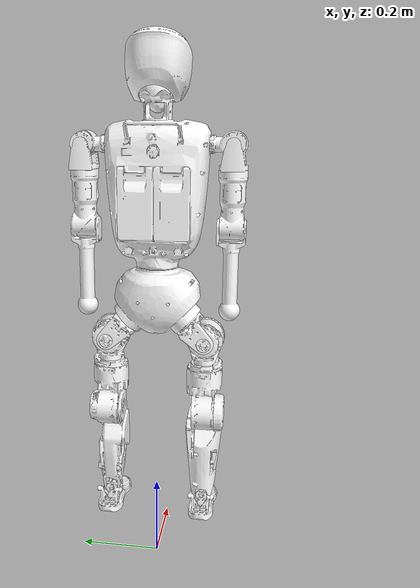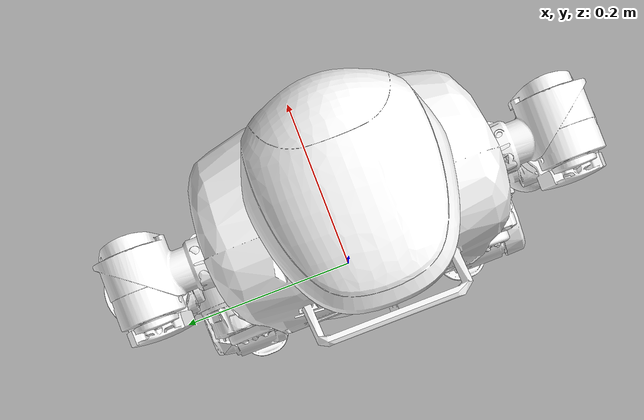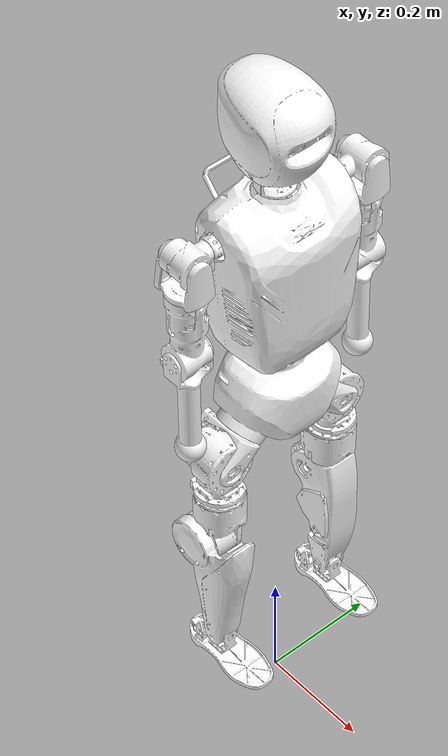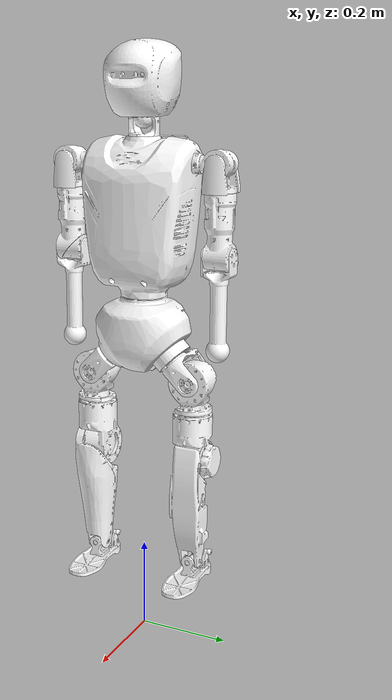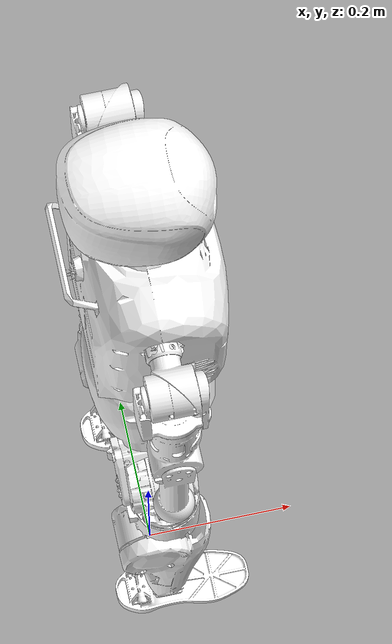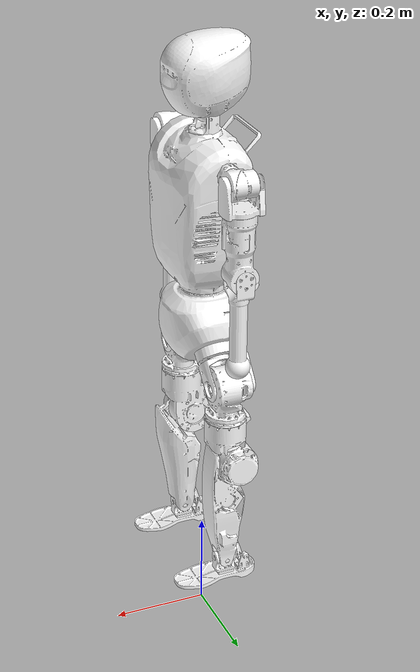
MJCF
<?xml version='1.0' encoding='utf-8'?>
<mujoco model="biped_s16">
  <compiler angle="radian" meshdir="../meshes/" />
  <size njmax="500" nconmax="100" />
    <default>
    <default class="collision">
      <geom material="collision" contype="1" conaffinity="1" user="2" rgba="0.9 0.3 0.3 0.2"/>
    </default>
  </default>
  <asset>
    <material name="collision"/>
    <mesh name="torso" file="torso.STL" />
    <mesh name="waist" file="waist.STL" />
    <mesh name="l_leg_pitch" file="l_leg_pitch.STL" />
    <mesh name="l_leg_roll" file="l_leg_roll.STL" />
    <mesh name="l_leg_yaw" file="l_leg_yaw.STL" />
    <mesh name="l_knee" file="l_knee.STL" />
    <mesh name="l_foot_pitch" file="l_foot_pitch.STL" />
    <mesh name="l_foot_roll" file="l_foot_roll.STL" />
    <mesh name="r_leg_pitch" file="r_leg_pitch.STL" />
    <mesh name="r_leg_roll" file="r_leg_roll.STL" />
    <mesh name="r_leg_yaw" file="r_leg_yaw.STL" />
    <mesh name="r_knee" file="r_knee.STL" />
    <mesh name="r_foot_pitch" file="r_foot_pitch.STL" />
    <mesh name="r_foot_roll" file="r_foot_roll.STL" />
    <mesh name="l_arm_pitch" file="l_arm_pitch.STL" />
    <mesh name="l_arm_roll" file="l_arm_roll.STL" />
    <mesh name="l_arm_yaw" file="l_arm_yaw.STL" />
    <mesh name="l_forearm" file="l_forearm.STL" />
    <mesh name="r_arm_pitch" file="r_arm_pitch.STL" />
    <mesh name="r_arm_roll" file="r_arm_roll.STL" />
    <mesh name="r_arm_yaw" file="r_arm_yaw.STL" />
    <mesh name="r_forearm" file="r_forearm.STL" />
    <mesh name="head_yaw" file="head_yaw.STL" />
    <mesh name="head_pitch" file="head_pitch.STL" />
  </asset>
  <worldbody>
    <body name="base_link" pos="0 0 0.82">
      <freejoint />
      <inertial pos="0.0015256 0 -0.119276" mass="4.60776" diaginertia="0.0210197 0.0145818 0.0145445" />
      <geom type="mesh" contype="0" conaffinity="0" group="1" density="0" rgba="1 1 1 1" mesh="waist"/>
      <geom size="0.08" pos="0.005 0 -0.12" quat="0.923764 0.382961 0 0" group="3"  class="collision"/>
      <body name="leg_l1_link" pos="0 0.117518 -0.219916">
          <inertial pos="-0.00211304 -0.0289049 0.0293713" quat="0.328382 0.628109 0.245387 0.661385" mass="0.428775" diaginertia="0.00113478 0.00105688 0.000681337" />
          <joint name="leg_l1_joint" pos="0 0 0" axis="0 0.707107 -0.707107" range="-3.228 2.44346" armature="0.003" actuatorfrcrange="-80 80" damping="0.2" frictionloss="0.0"/>
          <geom type="mesh" contype="0" conaffinity="0" group="1" density="0" rgba="1 1 1 1" mesh="l_leg_pitch"/>
          <geom size="0.04 0.024" pos="-0.028 -0.02 0.02" quat="0.923764 0.382961 0 0" type="capsule" group="3"  class="collision"/>
          <geom size="0.04 0.024" pos="0.028 -0.02 0.02" quat="0.923764 0.382961 0 0" type="capsule" group="3"  class="collision"/>
          <body name="leg_l2_link">
            <inertial pos="0.0036925 -0.00030734 -0.0533481" mass="2.50011" diaginertia="0.00737592 0.00723089 0.002556" />
            <joint name="leg_l2_joint" pos="0 0 0" axis="1 0 0" range="-0.847008 2.41414" armature="0.003" actuatorfrcrange="-63 63" damping="0.2" frictionloss="0.0"/>
            <geom type="mesh" contype="0" conaffinity="0" group="1" density="0" rgba="1 1 1 1" mesh="l_leg_roll"/>
            <geom size="0.05 0.045" pos="0 0 -0.045" type="capsule" group="3"  class="collision"/>
            <body name="leg_l3_link">
              <inertial pos="-0.0167216 -0.00529551 -0.174066" quat="0.707107 0 0 0.707107" mass="1.10966" diaginertia="0.00154328 0.00126836 0.00122709" />
              <joint name="leg_l3_joint" pos="0 0 0" axis="0 0 1" range="-1.66 1.66" armature="0.003" actuatorfrcrange="-80 80" damping="0.2" frictionloss="0.0"/>
              <geom type="mesh" contype="0" conaffinity="0" group="1" density="0" rgba="1 1 1 1" mesh="l_leg_yaw"/>
              <geom size="0.045 0.015" pos="-0.021 0 -0.182" quat="0.707388 0.706825 0 0" type="capsule" group="3"  class="collision"/>
              <body name="leg_l4_link" pos="-0.021 0 -0.182">
                <inertial pos="0.0223209 0.00803122 -0.104902" quat="0.707107 0 0 0.707107" mass="1.55002" diaginertia="0.00671651 0.00671114 0.0012886" />
                <joint name="leg_l4_joint" pos="0 0 0" axis="0 1 0" range="0 2.61799" armature="0.003" actuatorfrcrange="-63 63" damping="0.2" frictionloss="0.0"/>
                <geom type="mesh" contype="0" conaffinity="0" group="1" density="0" rgba="1 1 1 1" mesh="l_knee"/>
                <geom size="0.035 0.075" pos="0.021 0 -0.15" type="capsule" group="3"  class="collision"/>
                <geom size="0.005 0.02" pos="0.07 0 0.01" quat="0.707388 0.706825 0 0" type="capsule" group="3"  class="collision"/>
                <geom size="0.005 0.01" pos="0.072 0 -0.05" quat="0.707388 0.706825 0 0" type="capsule" group="3"  class="collision"/>
                <body name="leg_l5_link" pos="0.021 0 -0.235">
                  <inertial pos="0 0 0" mass="0.0692377" diaginertia="0.00067 0.00067 0.0001172" />
                  <joint name="leg_l5_joint" pos="0 0 0" axis="0 1 0" range="-0.872665 0.523599" armature="0.003" actuatorfrcrange="-27 27" damping="0.2" frictionloss="0.0"/>
                  <geom type="mesh" contype="0" conaffinity="0" group="1" density="0" rgba="1 1 1 1" mesh="l_foot_pitch"/>
                  <body name="leg_l6_link">
                    <inertial pos="-0.00390307 0 -0.0266577" quat="5.76506e-07 0.707653 -5.75615e-07 0.70656" mass="0.351334" diaginertia="0.000987485 0.000937598 0.000213813" />
                    <joint name="leg_l6_joint" pos="0 0 0" axis="1 0 0" range="-0.261799 0.261799" armature="0.003" actuatorfrcrange="-15 15" damping="0.2" frictionloss="0.0"/>
                    <geom type="mesh" contype="0" conaffinity="0" group="1" density="0" rgba="1 1 1 1" mesh="l_foot_roll"/>
                    <geom size="0.035 0.005" pos="-0.05 0 -0.046" type="cylinder" group="3"  class="collision"/>
                    <geom size="0.04 0.005" pos="0.08 0 -0.046" type="cylinder" group="3"  class="collision"/>
                    <geom size="0.06 0.035 0.005" pos="0.01 0 -0.046" type="box" group="3"  class="collision"/>
                  </body>
                </body>
              </body>
            </body>
          </body>
      </body>
      <body name="leg_r1_link" pos="0 -0.117518 -0.219916">
          <inertial pos="-0.00211304 0.0289049 0.0293713" quat="0.661385 0.245387 0.628109 0.328382" mass="0.428775" diaginertia="0.00113478 0.00105688 0.000681337" />
          <joint name="leg_r1_joint" pos="0 0 0" axis="0 -0.707107 -0.707107" range="-2.44 3.23" armature="0.003" actuatorfrcrange="-80 80" damping="0.2" frictionloss="0.0"/>
          <geom type="mesh" contype="0" conaffinity="0" group="1" density="0" rgba="1 1 1 1" mesh="r_leg_pitch"/>
          <geom size="0.04 0.024" pos="-0.028 0.02 0.02" quat="0.923764 -0.382961 0 0" type="capsule" group="3"  class="collision"/>
          <geom size="0.04 0.024" pos="0.028 0.02 0.02" quat="0.923764 -0.382961 0 0" type="capsule" group="3"  class="collision"/>
          <body name="leg_r2_link">
            <inertial pos="0.0036925 0.00030734 -0.0533481" mass="2.50011" diaginertia="0.00737592 0.00723089 0.002556" />
            <joint name="leg_r2_joint" pos="0 0 0" axis="1 0 0" range="-2.41 0.845961" armature="0.003" actuatorfrcrange="-63 63" damping="0.2" frictionloss="0.0"/>
            <geom type="mesh" contype="0" conaffinity="0" group="1" density="0" rgba="1 1 1 1" mesh="r_leg_roll"/>
            <geom size="0.05 0.045" pos="0 0 -0.045" type="capsule" group="3"  class="collision"/>
            <body name="leg_r3_link">
              <inertial pos="-0.0167216 0.00529551 -0.174066" quat="0.707107 0 0 0.707107" mass="1.10966" diaginertia="0.00154328 0.00126836 0.00122709" />
              <joint name="leg_r3_joint" pos="0 0 0" axis="0 0 1" range="-1.66 1.66" armature="0.003" actuatorfrcrange="-80 80" damping="0.2" frictionloss="0.0"/>
              <geom type="mesh" contype="0" conaffinity="0" group="1" density="0" rgba="1 1 1 1" mesh="r_leg_yaw"/>
              <geom size="0.045 0.015" pos="-0.021 0 -0.182" quat="0.707388 0.706825 0 0" type="capsule" group="3"  class="collision"/>
              <body name="leg_r4_link" pos="-0.021 0 -0.182">
                <inertial pos="0.0223209 -0.00803122 -0.104902" quat="0.707107 0 0 0.707107" mass="1.55002" diaginertia="0.00671651 0.00671114 0.0012886" />
                <joint name="leg_r4_joint" pos="0 0 0" axis="0 1 0" range="0 2.61799" armature="0.003" actuatorfrcrange="-63 63" damping="0.2" frictionloss="0.0"/>
                <geom type="mesh" contype="0" conaffinity="0" group="1" density="0" rgba="1 1 1 1" mesh="r_knee"/>
                <geom size="0.035 0.075" pos="0.021 0 -0.15" type="capsule"  group="3"  class="collision"/>
                <geom size="0.005 0.02" pos="0.07 0 0.01" quat="0.707388 0.706825 0 0" type="capsule" group="3"  class="collision"/>
                <geom size="0.005 0.01" pos="0.072 0 -0.05" quat="0.707388 0.706825 0 0" type="capsule" group="3"  class="collision"/>
                <body name="leg_r5_link" pos="0.021 0 -0.235">
                  <inertial pos="0 0 0" mass="0.0692377" diaginertia="0.00067 0.00067 0.0001172"/>
                  <joint name="leg_r5_joint" pos="0 0 0" axis="0 1 0" range="-0.872665 0.523599" armature="0.003" actuatorfrcrange="-27 27" damping="0.2" frictionloss="0.0"/>
                  <geom type="mesh" contype="0" conaffinity="0" group="1" density="0" rgba="1 1 1 1" mesh="r_foot_pitch"/>
                  <body name="leg_r6_link">
                    <inertial pos="-0.00390307 0 -0.0266577" quat="5.76506e-07 0.707653 -5.75615e-07 0.70656" mass="0.351334" diaginertia="0.000987485 0.000937598 0.000213813" />
                    <joint name="leg_r6_joint" pos="0 0 0" axis="1 0 0" range="-0.261799 0.261799" armature="0.003" actuatorfrcrange="-15 15" damping="0.2" frictionloss="0.0"/>
                    <geom type="mesh" contype="0" conaffinity="0" group="1" density="0" rgba="1 1 1 1" mesh="r_foot_roll"/>
                    <geom size="0.035 0.005" pos="-0.05 0 -0.046" type="cylinder" group="3"  class="collision"/>
                    <geom size="0.04 0.005" pos="0.08 0 -0.046" type="cylinder" group="3"  class="collision"/>
                    <geom size="0.06 0.035 0.005" pos="0.01 0 -0.046" type="box" group="3"  class="collision"/>
                  </body>
                </body>
              </body>
            </body>
          </body>
        </body>
      <body name="waist_yaw" pos="0.0 0.0 -0.0">
        <site name="imu" pos="0 0 0" />
        <inertial pos="-0.00602072 0 0.146576" mass="8.61338" diaginertia="0.085979 0.0673308 0.0420581" />
        <joint name="waist_yaw_joint" pos="0 0 0" axis="0 0 1" range="-2.61799 2.61799" armature="0.003" actuatorfrcrange="-80 80" damping="0.2" frictionloss="0.0"/>
        <geom type="mesh" contype="0" conaffinity="0" group="1" density="0" rgba="1 1 1 1" mesh="torso"/>
        <geom size="0.07 0.1 0.13" pos="0.01 0 0.14" type="box" group="3"  class="collision"/>
        <geom size="0.005 0.05" pos="-0.09 0 0.285" quat="0.707105 0.707108 0 0" type="cylinder" group="3"  class="collision"/>
        <body name="zarm_l1_link" pos="0.00029999 0.173503 0.239926">
          <inertial pos="0.00360552 -0.00144553 1.956e-05" quat="0 0.707107 0 0.707107" mass="0.373016" diaginertia="0.00022776 0.00020881 0.00020228" />
          <joint name="zarm_l1_joint" pos="0 0 0" axis="0 1 0" range="-3.14159 2.0944" armature="0.003" actuatorfrcrange="-14.1 14.1" damping="0.2" frictionloss="0.0"/>
          <geom type="mesh" contype="0" conaffinity="0" group="1" density="0" rgba="1 1 1 1" mesh="l_arm_pitch"/>
          <geom size="0.035 0.02" quat="0.707105 0 0.707108 0" type="capsule" group="3"  class="collision"/>
          <body name="zarm_l2_link">
            <inertial pos="0.00089424 0 -0.0423894" quat="0.707107 0 0 0.707107" mass="0.151129" diaginertia="0.00022693 0.00017363 0.00015667" />
            <joint name="zarm_l2_joint" pos="0 0 0" axis="1 0 0" range="-0.349066 3.49066" armature="0.003" actuatorfrcrange="-14.1 14.1" damping="0.2" frictionloss="0.0"/>
            <geom type="mesh" contype="0" conaffinity="0" group="1" density="0" rgba="1 1 1 1" mesh="l_arm_roll"/>
            <geom size="0.035 0.03" pos="0 0 -0.08" type="capsule" group="3"  class="collision"/>
            <body name="zarm_l3_link">
              <inertial pos="-0.00011141 -0.00359387 -0.144176" quat="0.937136 -0.0403207 -0.00133534 -0.346625" mass="0.669223" diaginertia="0.00179175 0.00163486 0.000309118" />
              <joint name="zarm_l3_joint" pos="0 0 0" axis="0 0 1" range="-1.5708 1.5708" armature="0.003" actuatorfrcrange="-14.1 14.1" damping="0.2" frictionloss="0.0"/>
              <geom type="mesh" contype="0" conaffinity="0" group="1" density="0" rgba="1 1 1 1" mesh="l_arm_yaw"/>
              <body name="zarm_l4_link" pos="0 0 -0.188">
                <inertial pos="-0.00053695 -0.000929541 -0.134958" quat="0.988063 0.0167967 -0.040532 -0.14767" mass="0.563218" diaginertia="0.000869641 0.000806131 0.000116147" />
                <joint name="zarm_l4_joint" pos="0 0 0" axis="0 1 0" range="-2.26893 0" armature="0.003" actuatorfrcrange="-14.1 14.1" damping="0.2" frictionloss="0.0"/>
                <geom type="mesh" contype="0" conaffinity="0" group="1" density="0" rgba="1 1 1 1" mesh="l_forearm"/>
                <geom size="0.034 0.015" quat="0.707388 0.706825 0 0" type="capsule" group="3"  class="collision"/>
                <geom size="0.025 0.06" pos="0 0 -0.1" type="capsule" group="3"  class="collision"/>
                <geom size="0.025" pos="0 0 -0.2" group="3" class="collision" friction="0.0001 0.005 0.0001"/>
              </body>
            </body>
          </body>
        </body>
        <body name="zarm_r1_link" pos="0.00029999 -0.173503 0.239926">
          <inertial pos="0.00360552 0.00144553 1.956e-05" quat="0 0.707107 0 0.707107" mass="0.373016" diaginertia="0.00022776 0.00020881 0.00020228" />
          <joint name="zarm_r1_joint" pos="0 0 0" axis="0 1 0" range="-3.14159 2.0944" armature="0.003" actuatorfrcrange="-14.1 14.1" damping="0.2" frictionloss="0.0"/>
          <geom type="mesh" contype="0" conaffinity="0" group="1" density="0" rgba="1 1 1 1" mesh="r_arm_pitch"/>
          <geom size="0.035 0.02" quat="0.707105 0 0.707108 0" type="capsule" group="3"  class="collision"/>
          <body name="zarm_r2_link">
            <inertial pos="0.00089424 0 -0.0423894" quat="0.707107 0 0 0.707107" mass="0.151129" diaginertia="0.00022693 0.00017363 0.00015667" />
            <joint name="zarm_r2_joint" pos="0 0 0" axis="1 0 0" range="-3.49066 0.349066" armature="0.003" actuatorfrcrange="-14.1 14.1" damping="0.2" frictionloss="0.0"/>
            <geom type="mesh" contype="0" conaffinity="0" group="1" density="0" rgba="1 1 1 1" mesh="r_arm_roll"/>
            <geom size="0.035 0.03" pos="0 0 -0.08" type="capsule" group="3"  class="collision"/>
            <body name="zarm_r3_link">
              <inertial pos="-0.00011141 0.00359387 -0.144176" quat="0.937136 0.0403207 -0.00133534 0.346625" mass="0.669221" diaginertia="0.00179175 0.00163486 0.000309118" />
              <joint name="zarm_r3_joint" pos="0 0 0" axis="0 0 1" range="-1.5708 1.5708" armature="0.003" actuatorfrcrange="-14.1 14.1" damping="0.2" frictionloss="0.0"/>
              <geom type="mesh" contype="0" conaffinity="0" group="1" density="0" rgba="1 1 1 1" mesh="r_arm_yaw"/>
              <body name="zarm_r4_link" pos="0 0 -0.188">
                <inertial pos="-0.00053695 0.000929541 -0.134958" quat="0.988063 -0.0167967 -0.040532 0.14767" mass="0.563218" diaginertia="0.000869641 0.000806131 0.000116147" />
                <joint name="zarm_r4_joint" pos="0 0 0" axis="0 1 0" range="-2.26893 0" armature="0.003" actuatorfrcrange="-14.1 14.1" damping="0.2" frictionloss="0.0"/>
                <geom type="mesh" contype="0" conaffinity="0" group="1" density="0" rgba="1 1 1 1" mesh="r_forearm"/>
                <geom size="0.034 0.015" quat="0.707388 0.706825 0 0" type="capsule" group="3"  class="collision"/>
                <geom size="0.025 0.06" pos="0 0 -0.1" type="capsule" group="3"  class="collision"/>
                <geom size="0.025" pos="0 0 -0.2" group="3" class="collision" friction="0.0001 0.005 0.0001"/>
              </body>
            </body>
          </body>
        </body>
        <body name="zhead_1_link" pos="0 0 0.356189">
          <inertial pos="-0.00081546 0 0.0168097" mass="1.03078" diaginertia="0.00215593 0.00186198 0.0007462" />
          <joint name="zhead_1_joint" pos="0 0 0" axis="0 0 1" range="-1.5708 1.5708" armature="0.003" actuatorfrcrange="-1.5 1.5" damping="0.2" frictionloss="0.0" />
          <geom type="mesh" contype="0" conaffinity="0" group="1" density="0" rgba="1 1 1 1" mesh="head_yaw"/>
          <geom size="0.035 0.05" type="capsule" group="3"  class="collision"/>
          <body name="zhead_2_link">
            <inertial pos="0.0146637 -8.28715e-06 0.0574266" quat="-0.00105718 0.707127 0.000596271 0.707085" mass="0.3366" diaginertia="0.00149549 0.00141661 0.00122745"/>
            <joint name="zhead_2_joint" pos="0 0 0" axis="0 1 0" range="-0.349066 0.785398" armature="0.003" actuatorfrcrange="-12 12" damping="0.2" frictionloss="0.0" />
            <geom type="mesh" contype="0" conaffinity="0" group="1" density="0" rgba="1 1 1 1" mesh="head_pitch"/>
            <geom type="sphere" size="0.075" pos="0 0 0.035" group="3"  class="collision"/>
          </body>
        </body>
      </body>
    </body>
  </worldbody>
  <actuator>
    <motor gear="1" joint="leg_l1_joint" name="leg_l1_joint_motor" ctrllimited="true" ctrlrange="-80 80" />
    <motor gear="1" joint="leg_l2_joint" name="leg_l2_joint_motor" ctrllimited="true" ctrlrange="-63 63" />
    <motor gear="1" joint="leg_l3_joint" name="leg_l3_joint_motor" ctrllimited="true" ctrlrange="-80 80" />
    <motor gear="1" joint="leg_l4_joint" name="leg_l4_joint_motor" ctrllimited="true" ctrlrange="-63 63" />
    <motor gear="1" joint="leg_l5_joint" name="leg_l5_joint_motor" ctrllimited="true" ctrlrange="-27 27" />
    <motor gear="1" joint="leg_l6_joint" name="leg_l6_joint_motor" ctrllimited="true" ctrlrange="-15 15" />
    <motor gear="1" joint="leg_r1_joint" name="leg_r1_joint_motor" ctrllimited="true" ctrlrange="-80 80" />
    <motor gear="1" joint="leg_r2_joint" name="leg_r2_joint_motor" ctrllimited="true" ctrlrange="-63 63" />
    <motor gear="1" joint="leg_r3_joint" name="leg_r3_joint_motor" ctrllimited="true" ctrlrange="-80 80" />
    <motor gear="1" joint="leg_r4_joint" name="leg_r4_joint_motor" ctrllimited="true" ctrlrange="-63 63" />
    <motor gear="1" joint="leg_r5_joint" name="leg_r5_joint_motor" ctrllimited="true" ctrlrange="-27 27" />
    <motor gear="1" joint="leg_r6_joint" name="leg_r6_joint_motor" ctrllimited="true" ctrlrange="-15 15" />
    <motor gear="1" joint="waist_yaw_joint" name="waist_yaw_joint_motor" ctrllimited="true" ctrlrange="-80 80" />
    <motor gear="1" joint="zarm_l1_joint" name="zarm_l1_joint_motor" ctrllimited="true" ctrlrange="-14.1 14.1" />
    <motor gear="1" joint="zarm_l2_joint" name="zarm_l2_joint_motor" ctrllimited="true" ctrlrange="-14.1 14.1" />
    <motor gear="1" joint="zarm_l3_joint" name="zarm_l3_joint_motor" ctrllimited="true" ctrlrange="-14.1 14.1" />
    <motor gear="1" joint="zarm_l4_joint" name="zarm_l4_joint_motor" ctrllimited="true" ctrlrange="-14.1 14.1" />
    <motor gear="1" joint="zarm_r1_joint" name="zarm_r1_joint_motor" ctrllimited="true" ctrlrange="-14.1 14.1" />
    <motor gear="1" joint="zarm_r2_joint" name="zarm_r2_joint_motor" ctrllimited="true" ctrlrange="-14.1 14.1" />
    <motor gear="1" joint="zarm_r3_joint" name="zarm_r3_joint_motor" ctrllimited="true" ctrlrange="-14.1 14.1" />
    <motor gear="1" joint="zarm_r4_joint" name="zarm_r4_joint_motor" ctrllimited="true" ctrlrange="-14.1 14.1" />
    <motor gear="1" joint="zhead_1_joint" name="zhead_1_joint_motor" ctrllimited="true" ctrlrange="-14.1 14.1" />
    <motor gear="1" joint="zhead_2_joint" name="zhead_2_joint_motor" ctrllimited="true" ctrlrange="-14.1 14.1" />
  </actuator>
  <sensor>
    <accelerometer name="BodyAcc" site="imu" />
    <velocimeter name="BodyVel" site="imu" />
    <gyro name="BodyGyro" site="imu" />
    <framepos name="BodyPos" objtype="site" objname="imu" />
    <framequat name="BodyQuat" objtype="site" objname="imu" />
    <jointpos name="leg_l1_joint_pos" joint="leg_l1_joint" />
    <jointpos name="leg_l2_joint_pos" joint="leg_l2_joint" />
    <jointpos name="leg_l3_joint_pos" joint="leg_l3_joint" />
    <jointpos name="leg_l4_joint_pos" joint="leg_l4_joint" />
    <jointpos name="leg_l5_joint_pos" joint="leg_l5_joint" />
    <jointpos name="leg_l6_joint_pos" joint="leg_l6_joint" />
    <jointpos name="leg_r1_joint_pos" joint="leg_r1_joint" />
    <jointpos name="leg_r2_joint_pos" joint="leg_r2_joint" />
    <jointpos name="leg_r3_joint_pos" joint="leg_r3_joint" />
    <jointpos name="leg_r4_joint_pos" joint="leg_r4_joint" />
    <jointpos name="leg_r5_joint_pos" joint="leg_r5_joint" />
    <jointpos name="leg_r6_joint_pos" joint="leg_r6_joint" />
    <jointpos name="waist_yaw_joint_pos" joint="waist_yaw_joint" />
    <jointpos name="zarm_l1_joint_pos" joint="zarm_l1_joint" />
    <jointpos name="zarm_l2_joint_pos" joint="zarm_l2_joint" />
    <jointpos name="zarm_l3_joint_pos" joint="zarm_l3_joint" />
    <jointpos name="zarm_l4_joint_pos" joint="zarm_l4_joint" />
    <jointpos name="zarm_r1_joint_pos" joint="zarm_r1_joint" />
    <jointpos name="zarm_r2_joint_pos" joint="zarm_r2_joint" />
    <jointpos name="zarm_r3_joint_pos" joint="zarm_r3_joint" />
    <jointpos name="zarm_r4_joint_pos" joint="zarm_r4_joint" />
    <jointpos name="zhead_1_joint_pos" joint="zhead_1_joint" />
    <jointpos name="zhead_2_joint_pos" joint="zhead_2_joint" />
    <jointvel name="leg_l1_joint_vel" joint="leg_l1_joint" />
    <jointvel name="leg_l2_joint_vel" joint="leg_l2_joint" />
    <jointvel name="leg_l3_joint_vel" joint="leg_l3_joint" />
    <jointvel name="leg_l4_joint_vel" joint="leg_l4_joint" />
    <jointvel name="leg_l5_joint_vel" joint="leg_l5_joint" />
    <jointvel name="leg_l6_joint_vel" joint="leg_l6_joint" />
    <jointvel name="leg_r1_joint_vel" joint="leg_r1_joint" />
    <jointvel name="leg_r2_joint_vel" joint="leg_r2_joint" />
    <jointvel name="leg_r3_joint_vel" joint="leg_r3_joint" />
    <jointvel name="leg_r4_joint_vel" joint="leg_r4_joint" />
    <jointvel name="leg_r5_joint_vel" joint="leg_r5_joint" />
    <jointvel name="leg_r6_joint_vel" joint="leg_r6_joint" />
    <jointvel name="waist_yaw_joint_vel" joint="waist_yaw_joint" />
    <jointvel name="zarm_l1_joint_vel" joint="zarm_l1_joint" />
    <jointvel name="zarm_l2_joint_vel" joint="zarm_l2_joint" />
    <jointvel name="zarm_l3_joint_vel" joint="zarm_l3_joint" />
    <jointvel name="zarm_l4_joint_vel" joint="zarm_l4_joint" />
    <jointvel name="zarm_r1_joint_vel" joint="zarm_r1_joint" />
    <jointvel name="zarm_r2_joint_vel" joint="zarm_r2_joint" />
    <jointvel name="zarm_r3_joint_vel" joint="zarm_r3_joint" />
    <jointvel name="zarm_r4_joint_vel" joint="zarm_r4_joint" />
    <jointvel name="zhead_1_joint_vel" joint="zhead_1_joint" />
    <jointvel name="zhead_2_joint_vel" joint="zhead_2_joint" />
  </sensor>
</mujoco>
